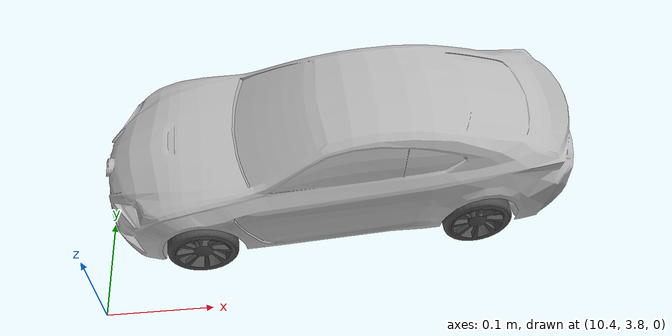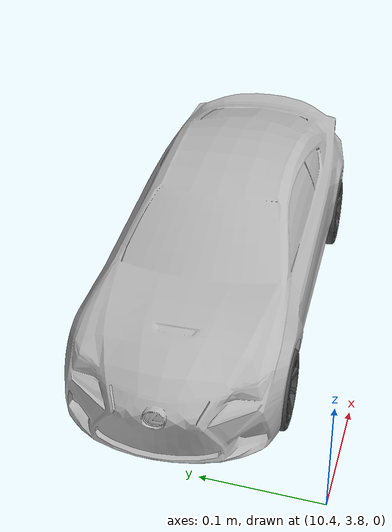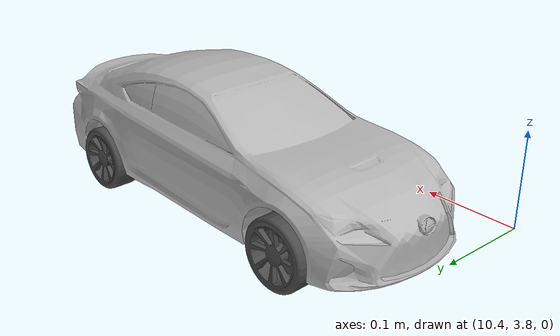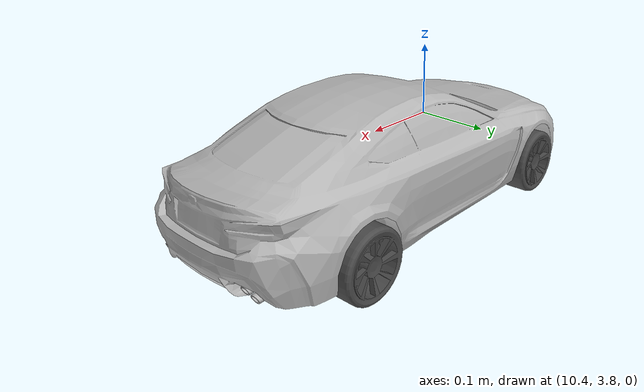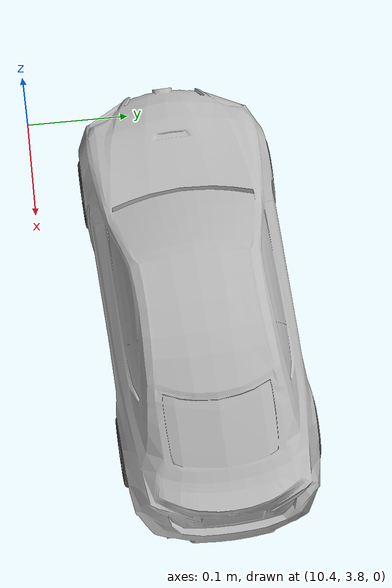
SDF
<sdf version="1.7">
 <world name="bfmc_official">
  <model name="automobile_obstacle_3">
   <static>1</static>
   <frame name="chassis::__model__" attached_to="chassis::link">
    <pose relative_to="__model__">0 0 0 0 -0 0</pose>
   </frame>
   <link name="chassis::link">
    <inertial>
     <mass>0.26244</mass>
     <inertia>
      <ixx>0.00283444</ixx>
      <ixy>0</ixy>
      <ixz>0</ixz>
      <iyy>0.00039867</iyy>
      <iyz>0</iyz>
      <izz>0.00323293</izz>
     </inertia>
    </inertial>
    <pose relative_to="chassis::__model__">0 0 0 0 -0 0</pose>
    <visual name="visual">
     <pose>0 0 -0.0065 0 -0 0</pose>
     <geometry><mesh><uri>model://chassis/meshes/chassisV5.dae</uri><scale>1 1 1</scale></mesh></geometry>
     <material>
      <lighting>1</lighting>
      <shader type="vertex"><normal_map>__default__</normal_map></shader>
      <ambient>0.6 0.6 0.6 1</ambient>
      <diffuse>0.85 0.85 0.85 1</diffuse>
      <specular>0.6 0.6 0.6 1</specular>
      <emissive>0 0 0 1</emissive>
     </material>
    </visual>
    <collision name="collision">
     <geometry><box><size>0.135 0.36 0.002</size></box></geometry>
     <surface>
      <friction>
       <ode><mu>1</mu><mu2>1</mu2><fdir1>0 0 0</fdir1><slip1>0</slip1><slip2>0</slip2></ode>
       <torsional>
        <coefficient>1</coefficient>
        <patch_radius>0</patch_radius>
        <surface_radius>0</surface_radius>
        <use_patch_radius>1</use_patch_radius>
        <ode><slip>0</slip></ode>
       </torsional>
      </friction>
      <bounce><restitution_coefficient>0</restitution_coefficient><threshold>1e+06</threshold></bounce>
      <contact>
       <collide_without_contact>0</collide_without_contact>
       <collide_without_contact_bitmask>1</collide_without_contact_bitmask>
       <collide_bitmask>1</collide_bitmask>
       <ode>
        <soft_cfm>0</soft_cfm>
        <soft_erp>0.2</soft_erp>
        <kp>1e+13</kp>
        <kd>1</kd>
        <max_vel>0.01</max_vel>
        <min_depth>0</min_depth>
       </ode>
       <bullet>
        <split_impulse>1</split_impulse>
        <split_impulse_penetration_threshold>-0.01</split_impulse_penetration_threshold>
        <soft_cfm>0</soft_cfm>
        <soft_erp>0.2</soft_erp>
        <kp>1e+13</kp>
        <kd>1</kd>
       </bullet>
      </contact>
     </surface>
    </collision>
   </link>
   <frame name="wheel_rear_left::__model__" attached_to="wheel_rear_left::link_rim">
    <pose relative_to="__model__">-0.152 0.081 0 0 -0 0</pose>
   </frame>
   <link name="wheel_rear_left::link_rim">
    <inertial>
     <mass>0.038</mass>
     <inertia>
      <ixx>1.283e-05</ixx>
      <ixy>0</ixy>
      <ixz>0</ixz>
      <iyy>1.283e-05</iyy>
      <iyz>0</iyz>
      <izz>2.069e-05</izz>
     </inertia>
    </inertial>
    <pose relative_to="wheel_rear_left::__model__">0 0 0 1.5708 -0 0</pose>
    <visual name="visual">
     <pose>0 0 0 -1.5708 0 0</pose>
     <geometry><mesh><uri>model://wheel_left/meshes/rim.dae</uri><scale>1 1 1</scale></mesh></geometry>
     <material>
      <lighting>1</lighting>
      <shader type="vertex"><normal_map>__default__</normal_map></shader>
      <ambient>0.2 0.2 0.2 1</ambient>
      <diffuse>0.3 0.3 0.3 1</diffuse>
      <specular>0.5 0.5 0.5 1</specular>
      <emissive>0 0 0 0</emissive>
     </material>
    </visual>
    <collision name="collision">
     <geometry><cylinder><radius>0.033</radius><length>0.028</length></cylinder></geometry>
     <surface>
      <friction>
       <ode><mu>0.7</mu><mu2>0.7</mu2><fdir1>0 0 0</fdir1><slip1>0</slip1><slip2>0</slip2></ode>
       <torsional>
        <coefficient>1</coefficient>
        <patch_radius>0</patch_radius>
        <surface_radius>0</surface_radius>
        <use_patch_radius>1</use_patch_radius>
        <ode><slip>0</slip></ode>
       </torsional>
      </friction>
      <bounce><restitution_coefficient>0</restitution_coefficient><threshold>1e+06</threshold></bounce>
      <contact>
       <collide_without_contact>0</collide_without_contact>
       <collide_without_contact_bitmask>1</collide_without_contact_bitmask>
       <collide_bitmask>1</collide_bitmask>
       <ode>
        <soft_cfm>0</soft_cfm>
        <soft_erp>0.2</soft_erp>
        <kp>1e+07</kp>
        <kd>1</kd>
        <max_vel>0.01</max_vel>
        <min_depth>0</min_depth>
       </ode>
       <bullet>
        <split_impulse>1</split_impulse>
        <split_impulse_penetration_threshold>-0.01</split_impulse_penetration_threshold>
        <soft_cfm>0</soft_cfm>
        <soft_erp>0.2</soft_erp>
        <kp>1e+07</kp>
        <kd>1</kd>
       </bullet>
      </contact>
     </surface>
    </collision>
   </link>
   <frame name="wheel_rear_right::__model__" attached_to="wheel_rear_right::link_rim">
    <pose relative_to="__model__">-0.152 -0.081 0 0 -0 0</pose>
   </frame>
   <link name="wheel_rear_right::link_rim">
    <inertial>
     <mass>0.038</mass>
     <inertia>
      <ixx>1.283e-05</ixx>
      <ixy>0</ixy>
      <ixz>0</ixz>
      <iyy>1.283e-05</iyy>
      <iyz>0</iyz>
      <izz>2.069e-05</izz>
     </inertia>
    </inertial>
    <pose relative_to="wheel_rear_right::__model__">0 0 0 1.5708 -0 0</pose>
    <visual name="visual">
     <pose>0 0 0 -1.5708 0 0</pose>
     <geometry><mesh><uri>model://wheel_right/meshes/rim.dae</uri><scale>1 1 1</scale></mesh></geometry>
     <material>
      <lighting>1</lighting>
      <shader type="vertex"><normal_map>__default__</normal_map></shader>
      <ambient>0.2 0.2 0.2 1</ambient>
      <diffuse>0.3 0.3 0.3 1</diffuse>
      <specular>0.5 0.5 0.5 1</specular>
      <emissive>0 0 0 0</emissive>
     </material>
    </visual>
    <collision name="collision">
     <geometry><cylinder><radius>0.033</radius><length>0.028</length></cylinder></geometry>
     <surface>
      <friction>
       <ode><mu>0.7</mu><mu2>0.7</mu2><fdir1>0 0 0</fdir1><slip1>0</slip1><slip2>0</slip2></ode>
       <torsional>
        <coefficient>1</coefficient>
        <patch_radius>0</patch_radius>
        <surface_radius>0</surface_radius>
        <use_patch_radius>1</use_patch_radius>
        <ode><slip>0</slip></ode>
       </torsional>
      </friction>
      <bounce><restitution_coefficient>0</restitution_coefficient><threshold>1e+06</threshold></bounce>
      <contact>
       <collide_without_contact>0</collide_without_contact>
       <collide_without_contact_bitmask>1</collide_without_contact_bitmask>
       <collide_bitmask>1</collide_bitmask>
       <ode>
        <soft_cfm>0</soft_cfm>
        <soft_erp>0.2</soft_erp>
        <kp>1e+07</kp>
        <kd>1</kd>
        <max_vel>0.01</max_vel>
        <min_depth>0</min_depth>
       </ode>
       <bullet>
        <split_impulse>1</split_impulse>
        <split_impulse_penetration_threshold>-0.01</split_impulse_penetration_threshold>
        <soft_cfm>0</soft_cfm>
        <soft_erp>0.2</soft_erp>
        <kp>1e+07</kp>
        <kd>1</kd>
       </bullet>
      </contact>
     </surface>
    </collision>
   </link>
   <frame name="steer_left::__model__" attached_to="steer_left::link_steer">
    <pose relative_to="__model__">0.112 0.0725 0 0 -0 0</pose>
   </frame>
   <link name="steer_left::link_steer">
    <inertial>
     <mass>0.001</mass>
     <inertia>
      <ixx>0.00014583</ixx>
      <ixy>0</ixy>
      <ixz>0</ixz>
      <iyy>0.00014583</iyy>
      <iyz>0</iyz>
      <izz>0.000125</izz>
     </inertia>
    </inertial>
    <pose relative_to="steer_left::__model__">0 0 0 1.5708 -0 0</pose>
    <visual name="visual">
     <geometry><cylinder><radius>0.001</radius><length>0.01</length></cylinder></geometry>
     <material>
      <lighting>1</lighting>
      <script><uri>file://media/materials/scripts/gazebo.material</uri><name>Gazebo/Grey</name></script>
      <shader type="vertex"><normal_map>__default__</normal_map></shader>
      <ambient>0.3 0.3 0.3 1</ambient>
      <diffuse>0.7 0.7 0.7 1</diffuse>
      <specular>0.01 0.01 0.01 1</specular>
      <emissive>0 0 0 1</emissive>
     </material>
    </visual>
    <collision name="collision">
     <geometry><cylinder><radius>0.001</radius><length>0.01</length></cylinder></geometry>
     <surface>
      <friction>
       <ode><mu>1</mu><mu2>1</mu2><fdir1>0 0 0</fdir1><slip1>0</slip1><slip2>0</slip2></ode>
       <torsional>
        <coefficient>1</coefficient>
        <patch_radius>0</patch_radius>
        <surface_radius>0</surface_radius>
        <use_patch_radius>1</use_patch_radius>
        <ode><slip>0</slip></ode>
       </torsional>
      </friction>
      <bounce><restitution_coefficient>0</restitution_coefficient><threshold>1e+06</threshold></bounce>
      <contact>
       <collide_without_contact>0</collide_without_contact>
       <collide_without_contact_bitmask>1</collide_without_contact_bitmask>
       <collide_bitmask>1</collide_bitmask>
       <ode>
        <soft_cfm>0</soft_cfm>
        <soft_erp>0.2</soft_erp>
        <kp>1e+13</kp>
        <kd>1</kd>
        <max_vel>0.01</max_vel>
        <min_depth>0</min_depth>
       </ode>
       <bullet>
        <split_impulse>1</split_impulse>
        <split_impulse_penetration_threshold>-0.01</split_impulse_penetration_threshold>
        <soft_cfm>0</soft_cfm>
        <soft_erp>0.2</soft_erp>
        <kp>1e+13</kp>
        <kd>1</kd>
       </bullet>
      </contact>
     </surface>
    </collision>
   </link>
   <frame name="steer_right::__model__" attached_to="steer_right::link_steer">
    <pose relative_to="__model__">0.112 -0.0725 0 0 -0 0</pose>
   </frame>
   <link name="steer_right::link_steer">
    <inertial>
     <mass>0.001</mass>
     <inertia>
      <ixx>0.00014583</ixx>
      <ixy>0</ixy>
      <ixz>0</ixz>
      <iyy>0.00014583</iyy>
      <iyz>0</iyz>
      <izz>0.000125</izz>
     </inertia>
    </inertial>
    <pose relative_to="steer_right::__model__">0 0 0 1.5708 -0 0</pose>
    <visual name="visual">
     <geometry><cylinder><radius>0.001</radius><length>0.01</length></cylinder></geometry>
     <material>
      <lighting>1</lighting>
      <script><uri>file://media/materials/scripts/gazebo.material</uri><name>Gazebo/Grey</name></script>
      <shader type="vertex"><normal_map>__default__</normal_map></shader>
      <ambient>0.3 0.3 0.3 1</ambient>
      <diffuse>0.7 0.7 0.7 1</diffuse>
      <specular>0.01 0.01 0.01 1</specular>
      <emissive>0 0 0 1</emissive>
     </material>
    </visual>
    <collision name="collision">
     <geometry><cylinder><radius>0.001</radius><length>0.01</length></cylinder></geometry>
     <surface>
      <friction>
       <ode><mu>1</mu><mu2>1</mu2><fdir1>0 0 0</fdir1><slip1>0</slip1><slip2>0</slip2></ode>
       <torsional>
        <coefficient>1</coefficient>
        <patch_radius>0</patch_radius>
        <surface_radius>0</surface_radius>
        <use_patch_radius>1</use_patch_radius>
        <ode><slip>0</slip></ode>
       </torsional>
      </friction>
      <bounce><restitution_coefficient>0</restitution_coefficient><threshold>1e+06</threshold></bounce>
      <contact>
       <collide_without_contact>0</collide_without_contact>
       <collide_without_contact_bitmask>1</collide_without_contact_bitmask>
       <collide_bitmask>1</collide_bitmask>
       <ode>
        <soft_cfm>0</soft_cfm>
        <soft_erp>0.2</soft_erp>
        <kp>1e+13</kp>
        <kd>1</kd>
        <max_vel>0.01</max_vel>
        <min_depth>0</min_depth>
       </ode>
       <bullet>
        <split_impulse>1</split_impulse>
        <split_impulse_penetration_threshold>-0.01</split_impulse_penetration_threshold>
        <soft_cfm>0</soft_cfm>
        <soft_erp>0.2</soft_erp>
        <kp>1e+13</kp>
        <kd>1</kd>
       </bullet>
      </contact>
     </surface>
    </collision>
   </link>
   <frame name="wheel_front_left::__model__" attached_to="wheel_front_left::link_rim">
    <pose relative_to="__model__">0.118 0.081 0 0 -0 0</pose>
   </frame>
   <link name="wheel_front_left::link_rim">
    <inertial>
     <mass>0.038</mass>
     <inertia>
      <ixx>1.283e-05</ixx>
      <ixy>0</ixy>
      <ixz>0</ixz>
      <iyy>1.283e-05</iyy>
      <iyz>0</iyz>
      <izz>2.069e-05</izz>
     </inertia>
    </inertial>
    <pose relative_to="wheel_front_left::__model__">0 0 0 1.5708 -0 0</pose>
    <visual name="visual">
     <pose>0 0 0 -1.5708 0 0</pose>
     <geometry><mesh><uri>model://wheel_left/meshes/rim.dae</uri><scale>1 1 1</scale></mesh></geometry>
     <material>
      <lighting>1</lighting>
      <shader type="vertex"><normal_map>__default__</normal_map></shader>
      <ambient>0.2 0.2 0.2 1</ambient>
      <diffuse>0.3 0.3 0.3 1</diffuse>
      <specular>0.5 0.5 0.5 1</specular>
      <emissive>0 0 0 0</emissive>
     </material>
    </visual>
    <collision name="collision">
     <geometry><cylinder><radius>0.033</radius><length>0.028</length></cylinder></geometry>
     <surface>
      <friction>
       <ode><mu>0.7</mu><mu2>0.7</mu2><fdir1>0 0 0</fdir1><slip1>0</slip1><slip2>0</slip2></ode>
       <torsional>
        <coefficient>1</coefficient>
        <patch_radius>0</patch_radius>
        <surface_radius>0</surface_radius>
        <use_patch_radius>1</use_patch_radius>
        <ode><slip>0</slip></ode>
       </torsional>
      </friction>
      <bounce><restitution_coefficient>0</restitution_coefficient><threshold>1e+06</threshold></bounce>
      <contact>
       <collide_without_contact>0</collide_without_contact>
       <collide_without_contact_bitmask>1</collide_without_contact_bitmask>
       <collide_bitmask>1</collide_bitmask>
       <ode>
        <soft_cfm>0</soft_cfm>
        <soft_erp>0.2</soft_erp>
        <kp>1e+07</kp>
        <kd>1</kd>
        <max_vel>0.01</max_vel>
        <min_depth>0</min_depth>
       </ode>
       <bullet>
        <split_impulse>1</split_impulse>
        <split_impulse_penetration_threshold>-0.01</split_impulse_penetration_threshold>
        <soft_cfm>0</soft_cfm>
        <soft_erp>0.2</soft_erp>
        <kp>1e+07</kp>
        <kd>1</kd>
       </bullet>
      </contact>
     </surface>
    </collision>
   </link>
   <frame name="wheel_front_right::__model__" attached_to="wheel_front_right::link_rim">
    <pose relative_to="__model__">0.118 -0.081 0 0 -0 0</pose>
   </frame>
   <link name="wheel_front_right::link_rim">
    <inertial>
     <mass>0.038</mass>
     <inertia>
      <ixx>1.283e-05</ixx>
      <ixy>0</ixy>
      <ixz>0</ixz>
      <iyy>1.283e-05</iyy>
      <iyz>0</iyz>
      <izz>2.069e-05</izz>
     </inertia>
    </inertial>
    <pose relative_to="wheel_front_right::__model__">0 0 0 1.5708 -0 0</pose>
    <visual name="visual">
     <pose>0 0 0 -1.5708 0 0</pose>
     <geometry><mesh><uri>model://wheel_right/meshes/rim.dae</uri><scale>1 1 1</scale></mesh></geometry>
     <material>
      <lighting>1</lighting>
      <shader type="vertex"><normal_map>__default__</normal_map></shader>
      <ambient>0.2 0.2 0.2 1</ambient>
      <diffuse>0.3 0.3 0.3 1</diffuse>
      <specular>0.5 0.5 0.5 1</specular>
      <emissive>0 0 0 0</emissive>
     </material>
    </visual>
    <collision name="collision">
     <geometry><cylinder><radius>0.033</radius><length>0.028</length></cylinder></geometry>
     <surface>
      <friction>
       <ode><mu>0.7</mu><mu2>0.7</mu2><fdir1>0 0 0</fdir1><slip1>0</slip1><slip2>0</slip2></ode>
       <torsional>
        <coefficient>1</coefficient>
        <patch_radius>0</patch_radius>
        <surface_radius>0</surface_radius>
        <use_patch_radius>1</use_patch_radius>
        <ode><slip>0</slip></ode>
       </torsional>
      </friction>
      <bounce><restitution_coefficient>0</restitution_coefficient><threshold>1e+06</threshold></bounce>
      <contact>
       <collide_without_contact>0</collide_without_contact>
       <collide_without_contact_bitmask>1</collide_without_contact_bitmask>
       <collide_bitmask>1</collide_bitmask>
       <ode>
        <soft_cfm>0</soft_cfm>
        <soft_erp>0.2</soft_erp>
        <kp>1e+07</kp>
        <kd>1</kd>
        <max_vel>0.01</max_vel>
        <min_depth>0</min_depth>
       </ode>
       <bullet>
        <split_impulse>1</split_impulse>
        <split_impulse_penetration_threshold>-0.01</split_impulse_penetration_threshold>
        <soft_cfm>0</soft_cfm>
        <soft_erp>0.2</soft_erp>
        <kp>1e+07</kp>
        <kd>1</kd>
       </bullet>
      </contact>
     </surface>
    </collision>
   </link>
   <frame name="car_body::__model__" attached_to="car_body::link">
    <pose relative_to="__model__">-0.024 0 -0.028 0 -0 0</pose>
   </frame>
   <link name="car_body::link">
    <inertial>
     <mass>1</mass>
     <inertia>
      <ixx>0.166667</ixx>
      <ixy>0</ixy>
      <ixz>0</ixz>
      <iyy>0.166667</iyy>
      <iyz>0</iyz>
      <izz>0.166667</izz>
     </inertia>
    </inertial>
    <pose relative_to="car_body::__model__">0 -0 0 0 -0 0</pose>
    <visual name="visual">
     <geometry><mesh><uri>model://car_body/meshes/CarBody.dae</uri><scale>1 1 1</scale></mesh></geometry>
     <material>
      <script>
       <uri>model://car_body/materials/scripts</uri>
       <uri>model://car_body/materials/textures</uri>
       <name>CarBody/Image</name>
      </script>
     </material>
    </visual>
   </link>
   <static>0</static>
   <joint name="joint_leftrear_rim" type="fixed">
    <parent>chassis::link</parent>
    <child>wheel_rear_left::link_rim</child>
   </joint>
   <joint name="joint_rightrear_rim" type="fixed">
    <parent>chassis::link</parent>
    <child>wheel_rear_right::link_rim</child>
   </joint>
   <joint name="joint_rightfront_rim" type="fixed">
    <parent>chassis::link</parent>
    <child>wheel_front_right::link_rim</child>
   </joint>
   <joint name="joint_leftfront_rim" type="fixed">
    <parent>chassis::link</parent>
    <child>wheel_front_left::link_rim</child>
   </joint>
   <joint name="joint_body" type="fixed"><parent>chassis::link</parent><child>car_body::link</child></joint>
   <pose>10.6063 3.94417 0.020225 0 0 -3.09763</pose>
  </model>
 </world>
</sdf>
